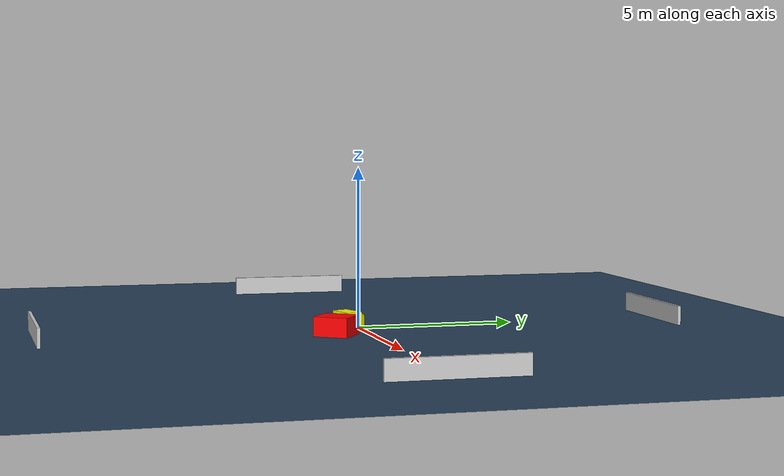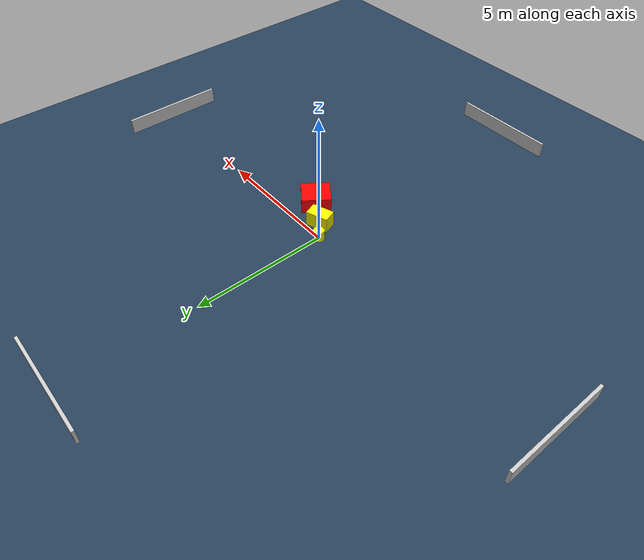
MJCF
<?xml version="1.0" ?>
<mujoco model="generated_environment">
  <option timestep="0.01" integrator="RK4" cone="elliptic"/>
  <default>
    <geom density="1"/>
  </default>
  <asset>
    <texture builtin="gradient" height="3072" name="skybox" rgb1="0.3 0.5 0.7" rgb2="0 0 0" type="skybox" width="512"/>
    <texture builtin="checker" height="300" name="groundplane" rgb1="0.2 0.3 0.4" rgb2="0.1 0.2 0.3" type="2d" width="300"/>
    <material name="groundplane" reflectance="0.2" texrepeat="5 5" texture="groundplane"/>
  </asset>
  <worldbody>
    <light dir="0 0 -1" directional="true" pos="0 0 1.5"/>
    <geom condim="3" friction="0.5 0.005 0.001" material="groundplane" name="floor" pos="0 0 0" size="0 0 0.05" type="plane"/>
    <body name="walls">
      <geom name="wall_1" condim="4" pos="-10.0 0.0 0.3" rgba="0.800000011920929 0.800000011920929 0.800000011920929 1.0" size="0.05 2.0 0.3" type="box"/>
      <geom name="wall_2" condim="4" pos="10.0 0.0 0.3" rgba="0.800000011920929 0.800000011920929 0.800000011920929 1.0" size="0.05 2.0 0.3" type="box"/>
      <geom name="wall_3" condim="4" pos="0.0 -10.0 0.3" rgba="0.800000011920929 0.800000011920929 0.800000011920929 1.0" size="2.0 0.05 0.3" type="box"/>
      <geom name="wall_4" condim="4" pos="0.0 10.0 0.3" rgba="0.800000011920929 0.800000011920929 0.800000011920929 1.0" size="2.0 0.05 0.3" type="box"/>
    </body>
    <body name="robot">
      <joint name="joint_x" type="slide" pos="0 0 0" axis="1 0 0"/>
      <joint name="joint_y" type="slide" pos="0 0 0" axis="0 1 0"/>
      <geom name="robot" type="cylinder" pos="0.0 0.0 0.2" size="0.2 0.2 0.0" mass="5.0" friction="1.0 0.005 0.0001" condim="4" rgba="1.0 1.0 0.0 1.0"/>
    </body>
    <body name="obstacle_1_movable">
      <geom name="obstacle_1_movable" condim="4" pos="0.538206312222341 -0.49072408832413467 0.3" euler="0 0 289.8214625432553" friction="0.0 0.005 0.001" rgba="1.0 1.0 0.0 1.0" size="0.2587350180001283 0.42301615271001225 0.3" type="box" mass="0.1"/>
      <joint type="free"/>
    </body>
    <body name="obstacle_2_static">
      <geom name="obstacle_2_static" condim="4" pos="1.5155513463470005 -1.0943814842177157 0.3" euler="0 0 53.4010276671636" friction="0.0 0.005 0.001" rgba="1.0 0.0 0.0 1.0" size="0.5482565572717732 0.499860254694415 0.3" type="box"/>
    </body>
  </worldbody>
  <actuator>
    <motor name="actuator_x" joint="joint_x" gear="1" ctrlrange="-1 1"/>
    <motor name="actuator_y" joint="joint_y" gear="1" ctrlrange="-1 1"/>
  </actuator>
</mujoco>
